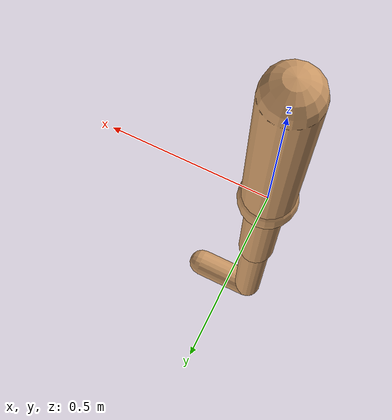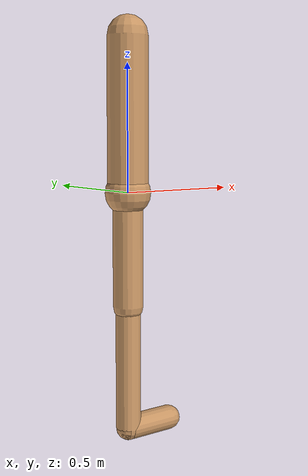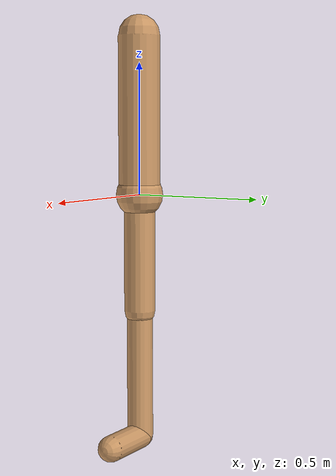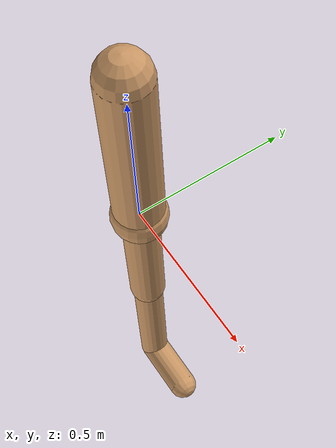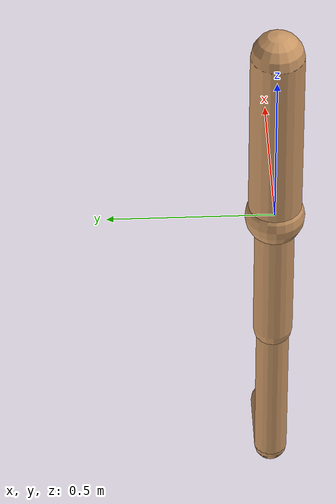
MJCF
<mujoco model="walker2d">
  <compiler angle="degree" inertiafromgeom="true"/>
  <default>
    <joint armature="0.01" damping=".1" stiffness="0" limited="true"/>
    <geom conaffinity="0" condim="3" contype="1" density="1000" friction="1.2 .1 .1" rgba="0.8 0.6 .4 1"/>
  </default>
  <option integrator="RK4" iterations="50" solver="PGS" timestep="0.003" />
  <worldbody>
    <body name="pelvis" pos="0 0 0">
      <joint armature="0" axis="1 0 0" damping="0" limited="false" name="ignorex" pos="0 0 0" stiffness="0" type="slide"/>
      <joint armature="0" axis="0 0 1" damping="0" limited="false" name="ignorez" pos="0 0 0" stiffness="0" type="slide"/>
      <joint armature="0" axis="0 1 0" damping="0" limited="false" name="ignorey" pos="0 0 0" stiffness="0" type="hinge"/>
      <geom pos="0 0 0" name="pelvis_geom" size="0.09" type="sphere"/>
      <body name="torso" pos="0 0 0">
        <joint axis="0 1 0" name="torso_joint" pos="0 0 0" range="-5 60" type="hinge"/>
        <geom fromto="0 0 0.6 0 0 0" name="torso_geom" size="0.08" type="capsule"/>
      </body>
      <body name="right_thigh" pos="0 0 0">
        <joint axis="0 1 0" name="right_thigh_joint" pos="0 0 0" range="-90 40" type="hinge"/>
        <geom fromto="0 0 0 0 0 -0.45" name="right_thigh_geom" size="0.06" type="capsule"/>
        <body name="right_leg" pos="0 0 -0.45">
          <joint axis="0 1 0" name="right_leg_joint" pos="0 0 0" range="0 150" type="hinge"/>
          <geom fromto="0 0 0 0 0 -0.5" name="right_leg_geom" size="0.05" type="capsule"/>
          <body name="right_foot" pos="0 0 -0.5">
            <joint axis="0 1 0" name="right_foot_joint" pos="0 0 0" range="-20 20" type="hinge"/>
            <geom fromto="0 0 0 0.2 0 0" name="right_foot_geom" size="0.05" type="capsule"/>
          </body>
        </body>
      </body>
      <body name="left_thigh" pos="0 0 0">
        <joint axis="0 1 0" name="left_thigh_joint" pos="0 0 0" range="-90 40" type="hinge"/>
        <geom fromto="0 0 0 0 0 -0.45" name="left_thigh_geom" size="0.06" type="capsule"/>
        <body name="left_leg" pos="0 0 -0.45">
          <joint axis="0 1 0" name="left_leg_joint" pos="0 0 0" range="0 150" type="hinge"/>
          <geom fromto="0 0 0 0 0 -0.5" name="left_leg_geom" size="0.05" type="capsule"/>
          <body name="left_foot" pos="0 0 -0.5">
            <joint axis="0 1 0" name="left_foot_joint" pos="0 0 0" range="-20 20" type="hinge"/>
            <geom fromto="0 0 0 0.2 0 0" name="left_foot_geom" size="0.05" type="capsule"/>
          </body>
        </body>
      </body>
    </body>
  </worldbody>
</mujoco>
